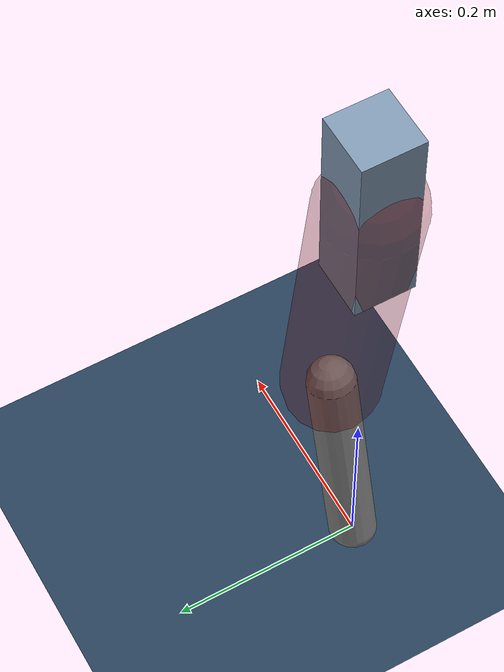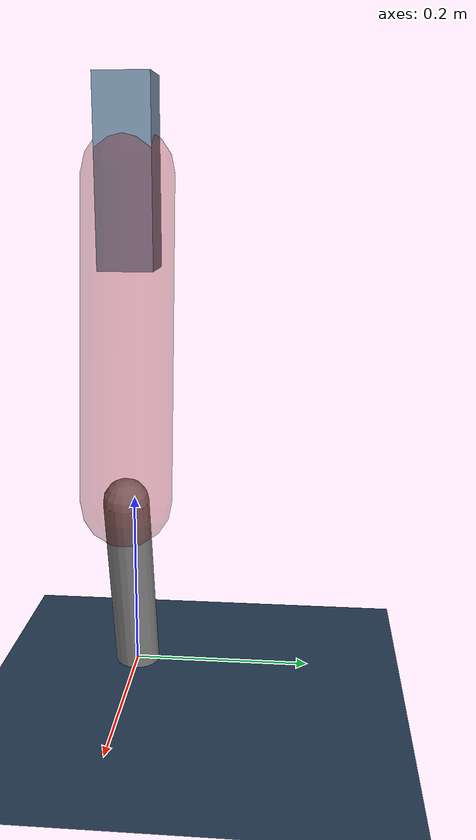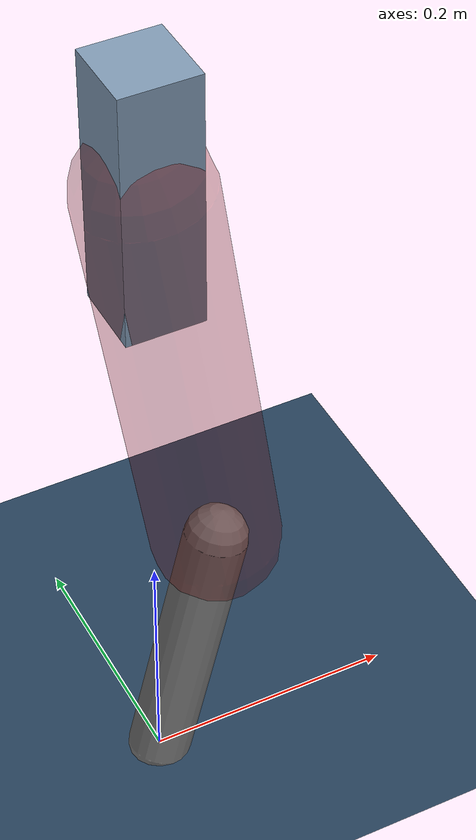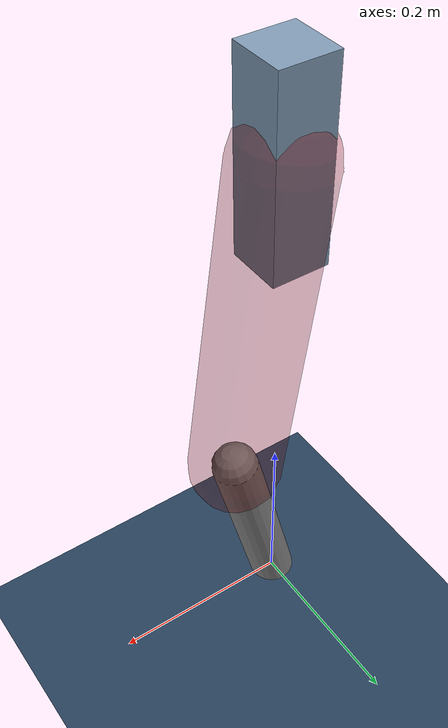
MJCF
<mujoco model="Hopper2D">
	<compiler inertiafromgeom="true" angle="radian" />
	<option timestep="0.001" integrator="implicit" cone="elliptic" solver="Newton" tolerance="1e-10" />

	<default>
		<geom contype="1" conaffinity="1" condim="3" friction="2 0.005 0.0001" solref="0.005 1" />
		<joint limited="true" damping="0.1" />
	</default>

	<asset>
		<texture name="skybox" type="skybox" builtin="gradient" rgb1=".4 .6 .8" rgb2="0 0 0" width="800" height="800" />
		<texture name="grid" type="2d" builtin="checker" rgb1=".1 .2 .3" rgb2=".2 .3 .4" width="300" height="300" mark="edge" markrgb=".2 .3 .4" />
		<material name="ground" texture="grid" texrepeat="1 1" texuniform="true" reflectance="0.1" />
		<material name="leg" rgba="0.5 0.6 0.7 1" />
	</asset>

	<worldbody>

		<geom name="floor" type="plane" size="5 5 0.25" material="ground" />

		<light directional="false" diffuse="0.8 0.8 0.8" specular="0.3 0.3 0.3" pos="0 0 2" dir="0 0 -1" />
		<light mode="targetbodycom" target="base" directional="false" diffuse="0.8 0.8 0.8" specular="0.3 0.3 0.3" pos="0 0 2" dir="0 0 -1" />

		<camera name="fixed" pos="0 -2 1" xyaxes="1 0 0 0 0 1" />
		<camera name="tracking" mode="trackcom" pos="0 -3 1" />

		<body name="root" pos="0 0 0.5595557937749669">
			<joint name="slide_x" type="slide" axis="1 0 0" range="-100 100" />
			<joint name="slide_z" type="slide" axis="0 0 1" range="0 10" />

			<body name="base" pos="0 0 0">
				<geom name="torso" type="box" size="0.03 0.03 0.1" mass="4.08" material="leg" />

				<body name="link1" pos="0 0 0" euler="0 1.422171108794192 0">
					<joint type="hinge" axis="0 -1 0" pos="0 0 0" name="hinge1" limited="true" range="-3.14 3.14" stiffness="0" damping="0.1" />
					<geom name="thigh" type="capsule" fromto="0 0 0 0.3491642680029694 0 0" size="0.05" rgba="0.5 0 0 0.3" mass="1.1243599504083144" />

					<body name="link2" pos="0.3491642680029694 0 0" euler="0 0.385431910606988 0">
						<joint type="hinge" axis="0 -1 0" pos="0 0 0" name="hinge2" limited="true" range="-3.14 3.14" stiffness="0" damping="0.1" />
						<geom name="shank" type="capsule" fromto="0 0 0 0.22039152577199755 0 0" size="0.025" mass="0.41801322061759805" />

					</body>
				</body>
			</body>
		</body>
	</worldbody>

	<actuator>
		<motor name="torque1" joint="hinge1" ctrlrange="-177.4026181322278 177.4026181322278" ctrllimited="true" gear="1" />
		<motor name="torque2" joint="hinge2" ctrlrange="-166.00479611208124 166.00479611208124" ctrllimited="true" gear="1" />
	</actuator>
</mujoco>
